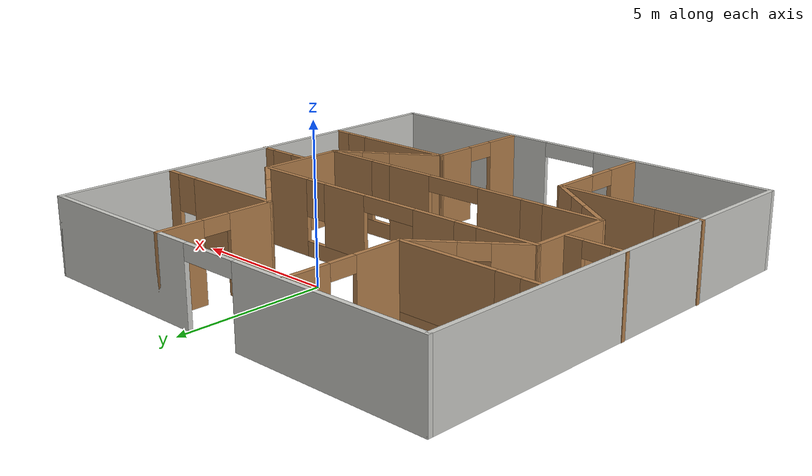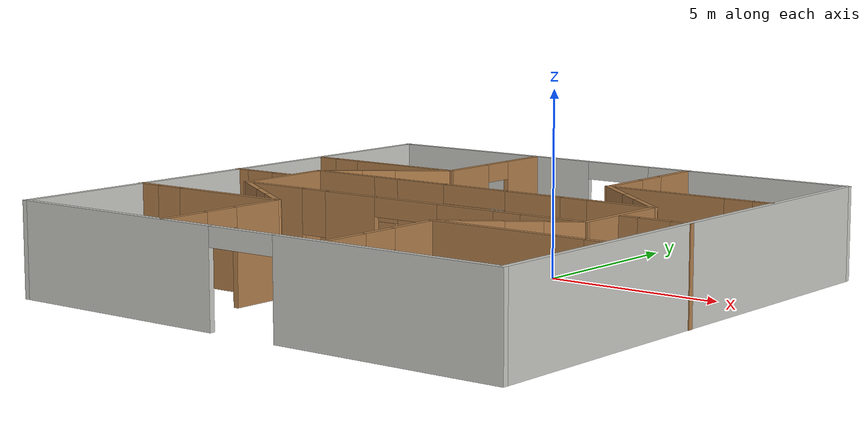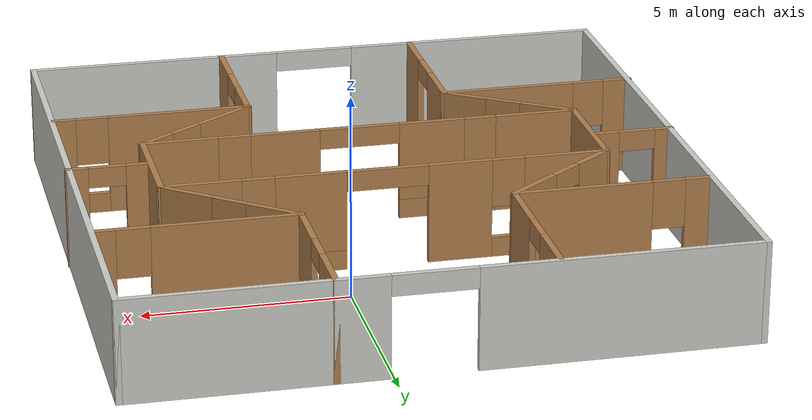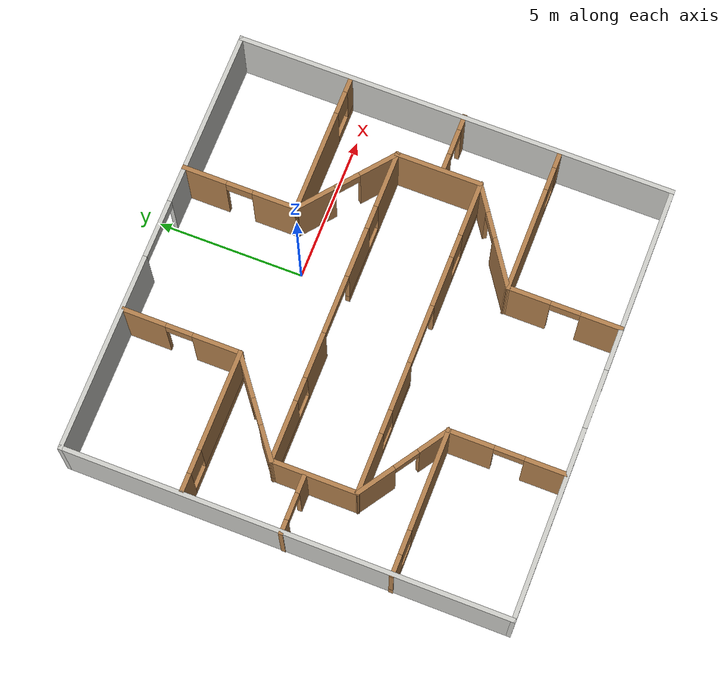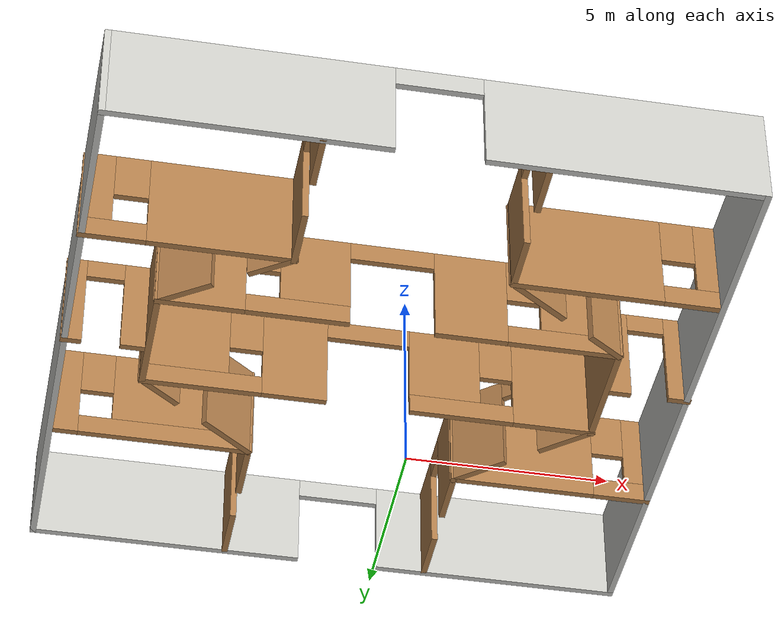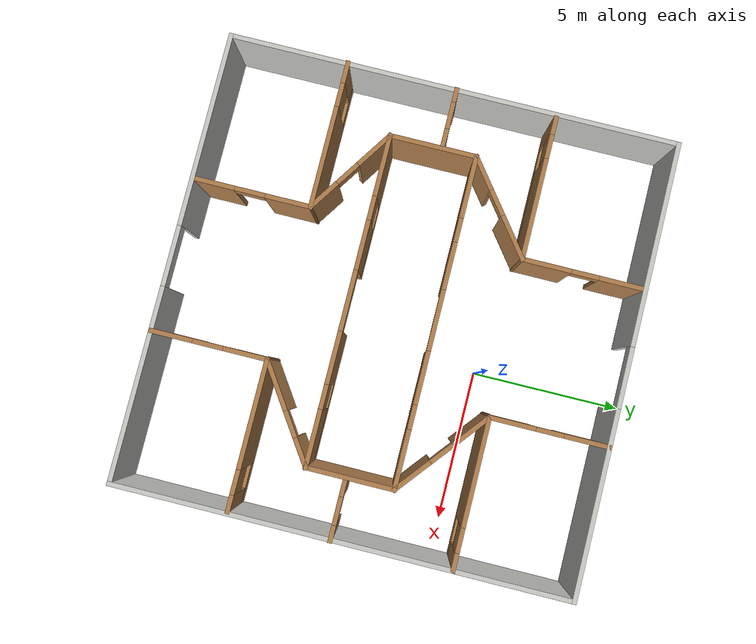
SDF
<?xml version='1.0'?>
<sdf version='1.6'>
  <model name='my_building'>
    <pose frame=''>-1.23215 -2.94383 0 0 -0 0</pose>
    <link name='Wall_106'>
      <pose frame=''>-4.91785 3.41483 0 0 -0 0</pose>
      <visual name='Wall_106_Visual_0'>
        <pose frame=''>-2.11085 0 1.25 0 -0 0</pose>
        <geometry>
          <box>
            <size>0.628291 0.15 2.5</size>
          </box>
        </geometry>
        <material>
          <script>
            <uri>file://media/materials/scripts/gazebo.material</uri>
            <name>Gazebo/Wood</name>
          </script>
          <ambient>0.996078 0.47451 0.0196078 1</ambient>
        </material>
      </visual>
      <collision name='Wall_106_Collision_0'>
        <geometry>
          <box>
            <size>0.628291 0.15 2.5</size>
          </box>
        </geometry>
        <pose frame=''>-2.11085 0 1.25 0 -0 0</pose>
      </collision>
      <visual name='Wall_106_Visual_1'>
        <pose frame=''>0.314146 0 0.25 0 -0 0</pose>
        <geometry>
          <box>
            <size>4.22171 0.15 0.5</size>
          </box>
        </geometry>
        <material>
          <script>
            <uri>file://media/materials/scripts/gazebo.material</uri>
            <name>Gazebo/Wood</name>
          </script>
          <ambient>0.996078 0.47451 0.0196078 1</ambient>
        </material>
      </visual>
      <collision name='Wall_106_Collision_1'>
        <geometry>
          <box>
            <size>4.22171 0.15 0.5</size>
          </box>
        </geometry>
        <pose frame=''>0.314146 0 0.25 0 -0 0</pose>
      </collision>
      <visual name='Wall_106_Visual_2'>
        <pose frame=''>0.714146 0 1.5 0 -0 0</pose>
        <geometry>
          <box>
            <size>3.42171 0.15 2</size>
          </box>
        </geometry>
        <material>
          <script>
            <uri>file://media/materials/scripts/gazebo.material</uri>
            <name>Gazebo/Wood</name>
          </script>
          <ambient>0.996078 0.47451 0.0196078 1</ambient>
        </material>
      </visual>
      <collision name='Wall_106_Collision_2'>
        <geometry>
          <box>
            <size>3.42171 0.15 2</size>
          </box>
        </geometry>
        <pose frame=''>0.714146 0 1.5 0 -0 0</pose>
      </collision>
      <visual name='Wall_106_Visual_3'>
        <pose frame=''>-1.39671 0 1.9 0 -0 0</pose>
        <geometry>
          <box>
            <size>0.8 0.15 1.2</size>
          </box>
        </geometry>
        <material>
          <script>
            <uri>file://media/materials/scripts/gazebo.material</uri>
            <name>Gazebo/Wood</name>
          </script>
          <ambient>0.996078 0.47451 0.0196078 1</ambient>
        </material>
      </visual>
      <collision name='Wall_106_Collision_3'>
        <geometry>
          <box>
            <size>0.8 0.15 1.2</size>
          </box>
        </geometry>
        <pose frame=''>-1.39671 0 1.9 0 -0 0</pose>
      </collision>
    </link>
    <link name='Wall_110'>
      <pose frame=''>-4.98829 -3.52523 0 0 -0 3.14159</pose>
      <visual name='Wall_110_Visual_0'>
        <pose frame=''>-0.776842 0 1.25 0 -0 0</pose>
        <geometry>
          <box>
            <size>3.44632 0.15 2.5</size>
          </box>
        </geometry>
        <material>
          <script>
            <uri>file://media/materials/scripts/gazebo.material</uri>
            <name>Gazebo/Wood</name>
          </script>
          <ambient>0.996078 0.47451 0.0196078 1</ambient>
        </material>
      </visual>
      <collision name='Wall_110_Collision_0'>
        <geometry>
          <box>
            <size>3.44632 0.15 2.5</size>
          </box>
        </geometry>
        <pose frame=''>-0.776842 0 1.25 0 -0 0</pose>
      </collision>
      <visual name='Wall_110_Visual_1'>
        <pose frame=''>1.72316 0 0.25 0 -0 0</pose>
        <geometry>
          <box>
            <size>1.55368 0.15 0.5</size>
          </box>
        </geometry>
        <material>
          <script>
            <uri>file://media/materials/scripts/gazebo.material</uri>
            <name>Gazebo/Wood</name>
          </script>
          <ambient>0.996078 0.47451 0.0196078 1</ambient>
        </material>
      </visual>
      <collision name='Wall_110_Collision_1'>
        <geometry>
          <box>
            <size>1.55368 0.15 0.5</size>
          </box>
        </geometry>
        <pose frame=''>1.72316 0 0.25 0 -0 0</pose>
      </collision>
      <visual name='Wall_110_Visual_2'>
        <pose frame=''>2.12316 0 1.5 0 -0 0</pose>
        <geometry>
          <box>
            <size>0.753684 0.15 2</size>
          </box>
        </geometry>
        <material>
          <script>
            <uri>file://media/materials/scripts/gazebo.material</uri>
            <name>Gazebo/Wood</name>
          </script>
          <ambient>0.996078 0.47451 0.0196078 1</ambient>
        </material>
      </visual>
      <collision name='Wall_110_Collision_2'>
        <geometry>
          <box>
            <size>0.753684 0.15 2</size>
          </box>
        </geometry>
        <pose frame=''>2.12316 0 1.5 0 -0 0</pose>
      </collision>
      <visual name='Wall_110_Visual_3'>
        <pose frame=''>1.34632 0 1.9 0 -0 0</pose>
        <geometry>
          <box>
            <size>0.8 0.15 1.2</size>
          </box>
        </geometry>
        <material>
          <script>
            <uri>file://media/materials/scripts/gazebo.material</uri>
            <name>Gazebo/Wood</name>
          </script>
          <ambient>0.996078 0.47451 0.0196078 1</ambient>
        </material>
      </visual>
      <collision name='Wall_110_Collision_3'>
        <geometry>
          <box>
            <size>0.8 0.15 1.2</size>
          </box>
        </geometry>
        <pose frame=''>1.34632 0 1.9 0 -0 0</pose>
      </collision>
    </link>
    <link name='Wall_112'>
      <pose frame=''>4.89491 -3.63421 0 0 0 -1.6e-05</pose>
      <visual name='Wall_112_Visual_0'>
        <pose frame=''>-0.698891 0 1.25 0 -0 0</pose>
        <geometry>
          <box>
            <size>3.60222 0.15 2.5</size>
          </box>
        </geometry>
        <material>
          <script>
            <uri>file://media/materials/scripts/gazebo.material</uri>
            <name>Gazebo/Wood</name>
          </script>
          <ambient>0.996078 0.47451 0.0196078 1</ambient>
        </material>
      </visual>
      <collision name='Wall_112_Collision_0'>
        <geometry>
          <box>
            <size>3.60222 0.15 2.5</size>
          </box>
        </geometry>
        <pose frame=''>-0.698891 0 1.25 0 -0 0</pose>
      </collision>
      <visual name='Wall_112_Visual_1'>
        <pose frame=''>1.80111 0 0.25 0 -0 0</pose>
        <geometry>
          <box>
            <size>1.39778 0.15 0.5</size>
          </box>
        </geometry>
        <material>
          <script>
            <uri>file://media/materials/scripts/gazebo.material</uri>
            <name>Gazebo/Wood</name>
          </script>
          <ambient>0.996078 0.47451 0.0196078 1</ambient>
        </material>
      </visual>
      <collision name='Wall_112_Collision_1'>
        <geometry>
          <box>
            <size>1.39778 0.15 0.5</size>
          </box>
        </geometry>
        <pose frame=''>1.80111 0 0.25 0 -0 0</pose>
      </collision>
      <visual name='Wall_112_Visual_2'>
        <pose frame=''>2.20111 0 1.5 0 -0 0</pose>
        <geometry>
          <box>
            <size>0.597783 0.15 2</size>
          </box>
        </geometry>
        <material>
          <script>
            <uri>file://media/materials/scripts/gazebo.material</uri>
            <name>Gazebo/Wood</name>
          </script>
          <ambient>0.996078 0.47451 0.0196078 1</ambient>
        </material>
      </visual>
      <collision name='Wall_112_Collision_2'>
        <geometry>
          <box>
            <size>0.597783 0.15 2</size>
          </box>
        </geometry>
        <pose frame=''>2.20111 0 1.5 0 -0 0</pose>
      </collision>
      <visual name='Wall_112_Visual_3'>
        <pose frame=''>1.50222 0 1.9 0 -0 0</pose>
        <geometry>
          <box>
            <size>0.8 0.15 1.2</size>
          </box>
        </geometry>
        <material>
          <script>
            <uri>file://media/materials/scripts/gazebo.material</uri>
            <name>Gazebo/Wood</name>
          </script>
          <ambient>0.996078 0.47451 0.0196078 1</ambient>
        </material>
      </visual>
      <collision name='Wall_112_Collision_3'>
        <geometry>
          <box>
            <size>0.8 0.15 1.2</size>
          </box>
        </geometry>
        <pose frame=''>1.50222 0 1.9 0 -0 0</pose>
      </collision>
    </link>
    <link name='Wall_121'>
      <pose frame=''>-6.47923 0.092939 0 0 -0 0</pose>
      <visual name='Wall_121_Visual_0'>
        <pose frame=''>-0.75294 0 1.25 0 -0 0</pose>
        <geometry>
          <box>
            <size>0.494121 0.15 2.5</size>
          </box>
        </geometry>
        <material>
          <script>
            <uri>file://media/materials/scripts/gazebo.material</uri>
            <name>Gazebo/Wood</name>
          </script>
          <ambient>1 1 0 1</ambient>
        </material>
      </visual>
      <collision name='Wall_121_Collision_0'>
        <geometry>
          <box>
            <size>0.494121 0.15 2.5</size>
          </box>
        </geometry>
        <pose frame=''>-0.75294 0 1.25 0 -0 0</pose>
      </collision>
      <visual name='Wall_121_Visual_1'>
        <pose frame=''>0.69706 0 1.25 0 -0 0</pose>
        <geometry>
          <box>
            <size>0.605879 0.15 2.5</size>
          </box>
        </geometry>
        <material>
          <script>
            <uri>file://media/materials/scripts/gazebo.material</uri>
            <name>Gazebo/Wood</name>
          </script>
          <ambient>1 1 0 1</ambient>
        </material>
      </visual>
      <collision name='Wall_121_Collision_1'>
        <geometry>
          <box>
            <size>0.605879 0.15 2.5</size>
          </box>
        </geometry>
        <pose frame=''>0.69706 0 1.25 0 -0 0</pose>
      </collision>
      <visual name='Wall_121_Visual_2'>
        <pose frame=''>-0.055879 0 2.25 0 -0 0</pose>
        <geometry>
          <box>
            <size>0.9 0.15 0.5</size>
          </box>
        </geometry>
        <material>
          <script>
            <uri>file://media/materials/scripts/gazebo.material</uri>
            <name>Gazebo/Wood</name>
          </script>
          <ambient>1 1 0 1</ambient>
        </material>
      </visual>
      <collision name='Wall_121_Collision_2'>
        <geometry>
          <box>
            <size>0.9 0.15 0.5</size>
          </box>
        </geometry>
        <pose frame=''>-0.055879 0 2.25 0 -0 0</pose>
      </collision>
    </link>
    <link name='Wall_127'>
      <pose frame=''>6.48829 -0.329162 0 0 -0 3.14159</pose>
      <visual name='Wall_127_Visual_0'>
        <pose frame=''>-0.719515 0 1.25 0 -0 0</pose>
        <geometry>
          <box>
            <size>0.56097 0.15 2.5</size>
          </box>
        </geometry>
        <material>
          <script>
            <uri>file://media/materials/scripts/gazebo.material</uri>
            <name>Gazebo/Wood</name>
          </script>
          <ambient>1 1 0 1</ambient>
        </material>
      </visual>
      <collision name='Wall_127_Collision_0'>
        <geometry>
          <box>
            <size>0.56097 0.15 2.5</size>
          </box>
        </geometry>
        <pose frame=''>-0.719515 0 1.25 0 -0 0</pose>
      </collision>
      <visual name='Wall_127_Visual_1'>
        <pose frame=''>0.730485 0 1.25 0 -0 0</pose>
        <geometry>
          <box>
            <size>0.53903 0.15 2.5</size>
          </box>
        </geometry>
        <material>
          <script>
            <uri>file://media/materials/scripts/gazebo.material</uri>
            <name>Gazebo/Wood</name>
          </script>
          <ambient>1 1 0 1</ambient>
        </material>
      </visual>
      <collision name='Wall_127_Collision_1'>
        <geometry>
          <box>
            <size>0.53903 0.15 2.5</size>
          </box>
        </geometry>
        <pose frame=''>0.730485 0 1.25 0 -0 0</pose>
      </collision>
      <visual name='Wall_127_Visual_2'>
        <pose frame=''>0.01097 0 2.25 0 -0 0</pose>
        <geometry>
          <box>
            <size>0.9 0.15 0.5</size>
          </box>
        </geometry>
        <material>
          <script>
            <uri>file://media/materials/scripts/gazebo.material</uri>
            <name>Gazebo/Wood</name>
          </script>
          <ambient>1 1 0 1</ambient>
        </material>
      </visual>
      <collision name='Wall_127_Collision_2'>
        <geometry>
          <box>
            <size>0.9 0.15 0.5</size>
          </box>
        </geometry>
        <pose frame=''>0.01097 0 2.25 0 -0 0</pose>
      </collision>
    </link>
    <link name='Wall_131'>
      <collision name='Wall_131_Collision'>
        <geometry>
          <box>
            <size>3 0.15 2.5</size>
          </box>
        </geometry>
        <pose frame=''>0 0 1.25 0 -0 0</pose>
      </collision>
      <visual name='Wall_131_Visual'>
        <pose frame=''>0 0 1.25 0 -0 0</pose>
        <geometry>
          <box>
            <size>3 0.15 2.5</size>
          </box>
        </geometry>
        <material>
          <script>
            <uri>file://media/materials/scripts/gazebo.material</uri>
            <name>Gazebo/Wood</name>
          </script>
          <ambient>0.333333 1 0 1</ambient>
        </material>
      </visual>
      <pose frame=''>-5.42447 -0.198993 0 0 0 -1.5708</pose>
    </link>
    <link name='Wall_132'>
      <pose frame=''>0.000529 -1.62399 0 0 -0 0</pose>
      <visual name='Wall_132_Visual_0'>
        <pose frame=''>-4.45342 0 1.25 0 -0 0</pose>
        <geometry>
          <box>
            <size>2.09316 0.15 2.5</size>
          </box>
        </geometry>
        <material>
          <script>
            <uri>file://media/materials/scripts/gazebo.material</uri>
            <name>Gazebo/Wood</name>
          </script>
          <ambient>0.333333 1 0 1</ambient>
        </material>
      </visual>
      <collision name='Wall_132_Collision_0'>
        <geometry>
          <box>
            <size>2.09316 0.15 2.5</size>
          </box>
        </geometry>
        <pose frame=''>-4.45342 0 1.25 0 -0 0</pose>
      </collision>
      <visual name='Wall_132_Visual_1'>
        <pose frame=''>1.90465 0 1.25 0 -0 0</pose>
        <geometry>
          <box>
            <size>1.7278 0.15 2.5</size>
          </box>
        </geometry>
        <material>
          <script>
            <uri>file://media/materials/scripts/gazebo.material</uri>
            <name>Gazebo/Wood</name>
          </script>
          <ambient>0.333333 1 0 1</ambient>
        </material>
      </visual>
      <collision name='Wall_132_Collision_1'>
        <geometry>
          <box>
            <size>1.7278 0.15 2.5</size>
          </box>
        </geometry>
        <pose frame=''>1.90465 0 1.25 0 -0 0</pose>
      </collision>
      <visual name='Wall_132_Visual_2'>
        <pose frame=''>-2.18304 0 0.25 0 -0 0</pose>
        <geometry>
          <box>
            <size>2.4476 0.15 0.5</size>
          </box>
        </geometry>
        <material>
          <script>
            <uri>file://media/materials/scripts/gazebo.material</uri>
            <name>Gazebo/Wood</name>
          </script>
          <ambient>0.333333 1 0 1</ambient>
        </material>
      </visual>
      <collision name='Wall_132_Collision_2'>
        <geometry>
          <box>
            <size>2.4476 0.15 0.5</size>
          </box>
        </geometry>
        <pose frame=''>-2.18304 0 0.25 0 -0 0</pose>
      </collision>
      <visual name='Wall_132_Visual_3'>
        <pose frame=''>4.13427 0 0.25 0 -0 0</pose>
        <geometry>
          <box>
            <size>2.73145 0.15 0.5</size>
          </box>
        </geometry>
        <material>
          <script>
            <uri>file://media/materials/scripts/gazebo.material</uri>
            <name>Gazebo/Wood</name>
          </script>
          <ambient>0.333333 1 0 1</ambient>
        </material>
      </visual>
      <collision name='Wall_132_Collision_3'>
        <geometry>
          <box>
            <size>2.73145 0.15 0.5</size>
          </box>
        </geometry>
        <pose frame=''>4.13427 0 0.25 0 -0 0</pose>
      </collision>
      <visual name='Wall_132_Visual_4'>
        <pose frame=''>-1.78304 0 1.5 0 -0 0</pose>
        <geometry>
          <box>
            <size>1.6476 0.15 2</size>
          </box>
        </geometry>
        <material>
          <script>
            <uri>file://media/materials/scripts/gazebo.material</uri>
            <name>Gazebo/Wood</name>
          </script>
          <ambient>0.333333 1 0 1</ambient>
        </material>
      </visual>
      <collision name='Wall_132_Collision_4'>
        <geometry>
          <box>
            <size>1.6476 0.15 2</size>
          </box>
        </geometry>
        <pose frame=''>-1.78304 0 1.5 0 -0 0</pose>
      </collision>
      <visual name='Wall_132_Visual_5'>
        <pose frame=''>-1.78304 0 1.5 0 -0 0</pose>
        <geometry>
          <box>
            <size>1.6476 0.15 2</size>
          </box>
        </geometry>
        <material>
          <script>
            <uri>file://media/materials/scripts/gazebo.material</uri>
            <name>Gazebo/Wood</name>
          </script>
          <ambient>0.333333 1 0 1</ambient>
        </material>
      </visual>
      <collision name='Wall_132_Collision_5'>
        <geometry>
          <box>
            <size>1.6476 0.15 2</size>
          </box>
        </geometry>
        <pose frame=''>-1.78304 0 1.5 0 -0 0</pose>
      </collision>
      <visual name='Wall_132_Visual_6'>
        <pose frame=''>4.53428 0 1.5 0 -0 0</pose>
        <geometry>
          <box>
            <size>1.93145 0.15 2</size>
          </box>
        </geometry>
        <material>
          <script>
            <uri>file://media/materials/scripts/gazebo.material</uri>
            <name>Gazebo/Wood</name>
          </script>
          <ambient>0.333333 1 0 1</ambient>
        </material>
      </visual>
      <collision name='Wall_132_Collision_6'>
        <geometry>
          <box>
            <size>1.93145 0.15 2</size>
          </box>
        </geometry>
        <pose frame=''>4.53428 0 1.5 0 -0 0</pose>
      </collision>
      <visual name='Wall_132_Visual_7'>
        <pose frame=''>-3.00684 0 1.9 0 -0 0</pose>
        <geometry>
          <box>
            <size>0.8 0.15 1.2</size>
          </box>
        </geometry>
        <material>
          <script>
            <uri>file://media/materials/scripts/gazebo.material</uri>
            <name>Gazebo/Wood</name>
          </script>
          <ambient>0.333333 1 0 1</ambient>
        </material>
      </visual>
      <collision name='Wall_132_Collision_7'>
        <geometry>
          <box>
            <size>0.8 0.15 1.2</size>
          </box>
        </geometry>
        <pose frame=''>-3.00684 0 1.9 0 -0 0</pose>
      </collision>
      <visual name='Wall_132_Visual_8'>
        <pose frame=''>3.16855 0 1.9 0 -0 0</pose>
        <geometry>
          <box>
            <size>0.8 0.15 1.2</size>
          </box>
        </geometry>
        <material>
          <script>
            <uri>file://media/materials/scripts/gazebo.material</uri>
            <name>Gazebo/Wood</name>
          </script>
          <ambient>0.333333 1 0 1</ambient>
        </material>
      </visual>
      <collision name='Wall_132_Collision_8'>
        <geometry>
          <box>
            <size>0.8 0.15 1.2</size>
          </box>
        </geometry>
        <pose frame=''>3.16855 0 1.9 0 -0 0</pose>
      </collision>
      <visual name='Wall_132_Visual_9'>
        <pose frame=''>0.040754 0 2.25 0 -0 0</pose>
        <geometry>
          <box>
            <size>2 0.15 0.5</size>
          </box>
        </geometry>
        <material>
          <script>
            <uri>file://media/materials/scripts/gazebo.material</uri>
            <name>Gazebo/Wood</name>
          </script>
          <ambient>0.333333 1 0 1</ambient>
        </material>
      </visual>
      <collision name='Wall_132_Collision_9'>
        <geometry>
          <box>
            <size>2 0.15 0.5</size>
          </box>
        </geometry>
        <pose frame=''>0.040754 0 2.25 0 -0 0</pose>
      </collision>
      <visual name='Wall_132_Visual_10'>
        <pose frame=''>0.040754 0 2.25 0 -0 0</pose>
        <geometry>
          <box>
            <size>2 0.15 0.5</size>
          </box>
        </geometry>
        <material>
          <script>
            <uri>file://media/materials/scripts/gazebo.material</uri>
            <name>Gazebo/Wood</name>
          </script>
          <ambient>0.333333 1 0 1</ambient>
        </material>
      </visual>
      <collision name='Wall_132_Collision_10'>
        <geometry>
          <box>
            <size>2 0.15 0.5</size>
          </box>
        </geometry>
        <pose frame=''>0.040754 0 2.25 0 -0 0</pose>
      </collision>
    </link>
    <link name='Wall_133'>
      <collision name='Wall_133_Collision'>
        <geometry>
          <box>
            <size>3 0.15 2.5</size>
          </box>
        </geometry>
        <pose frame=''>0 0 1.25 0 -0 0</pose>
      </collision>
      <visual name='Wall_133_Visual'>
        <pose frame=''>0 0 1.25 0 -0 0</pose>
        <geometry>
          <box>
            <size>3 0.15 2.5</size>
          </box>
        </geometry>
        <material>
          <script>
            <uri>file://media/materials/scripts/gazebo.material</uri>
            <name>Gazebo/Wood</name>
          </script>
          <ambient>0.333333 1 0 1</ambient>
        </material>
      </visual>
      <pose frame=''>5.42553 -0.198993 0 0 -0 1.5708</pose>
    </link>
    <link name='Wall_134'>
      <pose frame=''>0.000529 1.22601 0 0 -0 3.14159</pose>
      <visual name='Wall_134_Visual_0'>
        <pose frame=''>-4.5042 0 1.25 0 -0 0</pose>
        <geometry>
          <box>
            <size>1.9916 0.15 2.5</size>
          </box>
        </geometry>
        <material>
          <script>
            <uri>file://media/materials/scripts/gazebo.material</uri>
            <name>Gazebo/Wood</name>
          </script>
          <ambient>0.333333 1 0 1</ambient>
        </material>
      </visual>
      <collision name='Wall_134_Collision_0'>
        <geometry>
          <box>
            <size>1.9916 0.15 2.5</size>
          </box>
        </geometry>
        <pose frame=''>-4.5042 0 1.25 0 -0 0</pose>
      </collision>
      <visual name='Wall_134_Visual_1'>
        <pose frame=''>1.80309 0 1.25 0 -0 0</pose>
        <geometry>
          <box>
            <size>1.5674 0.15 2.5</size>
          </box>
        </geometry>
        <material>
          <script>
            <uri>file://media/materials/scripts/gazebo.material</uri>
            <name>Gazebo/Wood</name>
          </script>
          <ambient>0.333333 1 0 1</ambient>
        </material>
      </visual>
      <collision name='Wall_134_Collision_1'>
        <geometry>
          <box>
            <size>1.5674 0.15 2.5</size>
          </box>
        </geometry>
        <pose frame=''>1.80309 0 1.25 0 -0 0</pose>
      </collision>
      <visual name='Wall_134_Visual_2'>
        <pose frame=''>-2.2445 0 0.25 0 -0 0</pose>
        <geometry>
          <box>
            <size>2.5278 0.15 0.5</size>
          </box>
        </geometry>
        <material>
          <script>
            <uri>file://media/materials/scripts/gazebo.material</uri>
            <name>Gazebo/Wood</name>
          </script>
          <ambient>0.333333 1 0 1</ambient>
        </material>
      </visual>
      <collision name='Wall_134_Collision_2'>
        <geometry>
          <box>
            <size>2.5278 0.15 0.5</size>
          </box>
        </geometry>
        <pose frame=''>-2.2445 0 0.25 0 -0 0</pose>
      </collision>
      <visual name='Wall_134_Visual_3'>
        <pose frame=''>4.0434 0 0.25 0 -0 0</pose>
        <geometry>
          <box>
            <size>2.91321 0.15 0.5</size>
          </box>
        </geometry>
        <material>
          <script>
            <uri>file://media/materials/scripts/gazebo.material</uri>
            <name>Gazebo/Wood</name>
          </script>
          <ambient>0.333333 1 0 1</ambient>
        </material>
      </visual>
      <collision name='Wall_134_Collision_3'>
        <geometry>
          <box>
            <size>2.91321 0.15 0.5</size>
          </box>
        </geometry>
        <pose frame=''>4.0434 0 0.25 0 -0 0</pose>
      </collision>
      <visual name='Wall_134_Visual_4'>
        <pose frame=''>-1.8445 0 1.5 0 -0 0</pose>
        <geometry>
          <box>
            <size>1.7278 0.15 2</size>
          </box>
        </geometry>
        <material>
          <script>
            <uri>file://media/materials/scripts/gazebo.material</uri>
            <name>Gazebo/Wood</name>
          </script>
          <ambient>0.333333 1 0 1</ambient>
        </material>
      </visual>
      <collision name='Wall_134_Collision_4'>
        <geometry>
          <box>
            <size>1.7278 0.15 2</size>
          </box>
        </geometry>
        <pose frame=''>-1.8445 0 1.5 0 -0 0</pose>
      </collision>
      <visual name='Wall_134_Visual_5'>
        <pose frame=''>-1.8445 0 1.5 0 -0 0</pose>
        <geometry>
          <box>
            <size>1.7278 0.15 2</size>
          </box>
        </geometry>
        <material>
          <script>
            <uri>file://media/materials/scripts/gazebo.material</uri>
            <name>Gazebo/Wood</name>
          </script>
          <ambient>0.333333 1 0 1</ambient>
        </material>
      </visual>
      <collision name='Wall_134_Collision_5'>
        <geometry>
          <box>
            <size>1.7278 0.15 2</size>
          </box>
        </geometry>
        <pose frame=''>-1.8445 0 1.5 0 -0 0</pose>
      </collision>
      <visual name='Wall_134_Visual_6'>
        <pose frame=''>4.4434 0 1.5 0 -0 0</pose>
        <geometry>
          <box>
            <size>2.11321 0.15 2</size>
          </box>
        </geometry>
        <material>
          <script>
            <uri>file://media/materials/scripts/gazebo.material</uri>
            <name>Gazebo/Wood</name>
          </script>
          <ambient>0.333333 1 0 1</ambient>
        </material>
      </visual>
      <collision name='Wall_134_Collision_6'>
        <geometry>
          <box>
            <size>2.11321 0.15 2</size>
          </box>
        </geometry>
        <pose frame=''>4.4434 0 1.5 0 -0 0</pose>
      </collision>
      <visual name='Wall_134_Visual_7'>
        <pose frame=''>-3.1084 0 1.9 0 -0 0</pose>
        <geometry>
          <box>
            <size>0.8 0.15 1.2</size>
          </box>
        </geometry>
        <material>
          <script>
            <uri>file://media/materials/scripts/gazebo.material</uri>
            <name>Gazebo/Wood</name>
          </script>
          <ambient>0.333333 1 0 1</ambient>
        </material>
      </visual>
      <collision name='Wall_134_Collision_7'>
        <geometry>
          <box>
            <size>0.8 0.15 1.2</size>
          </box>
        </geometry>
        <pose frame=''>-3.1084 0 1.9 0 -0 0</pose>
      </collision>
      <visual name='Wall_134_Visual_8'>
        <pose frame=''>2.98679 0 1.9 0 -0 0</pose>
        <geometry>
          <box>
            <size>0.8 0.15 1.2</size>
          </box>
        </geometry>
        <material>
          <script>
            <uri>file://media/materials/scripts/gazebo.material</uri>
            <name>Gazebo/Wood</name>
          </script>
          <ambient>0.333333 1 0 1</ambient>
        </material>
      </visual>
      <collision name='Wall_134_Collision_8'>
        <geometry>
          <box>
            <size>0.8 0.15 1.2</size>
          </box>
        </geometry>
        <pose frame=''>2.98679 0 1.9 0 -0 0</pose>
      </collision>
      <visual name='Wall_134_Visual_9'>
        <pose frame=''>0.019396 0 2.25 0 -0 0</pose>
        <geometry>
          <box>
            <size>2 0.15 0.5</size>
          </box>
        </geometry>
        <material>
          <script>
            <uri>file://media/materials/scripts/gazebo.material</uri>
            <name>Gazebo/Wood</name>
          </script>
          <ambient>0.333333 1 0 1</ambient>
        </material>
      </visual>
      <collision name='Wall_134_Collision_9'>
        <geometry>
          <box>
            <size>2 0.15 0.5</size>
          </box>
        </geometry>
        <pose frame=''>0.019396 0 2.25 0 -0 0</pose>
      </collision>
      <visual name='Wall_134_Visual_10'>
        <pose frame=''>0.019396 0 2.25 0 -0 0</pose>
        <geometry>
          <box>
            <size>2 0.15 0.5</size>
          </box>
        </geometry>
        <material>
          <script>
            <uri>file://media/materials/scripts/gazebo.material</uri>
            <name>Gazebo/Wood</name>
          </script>
          <ambient>0.333333 1 0 1</ambient>
        </material>
      </visual>
      <collision name='Wall_134_Collision_10'>
        <geometry>
          <box>
            <size>2 0.15 0.5</size>
          </box>
        </geometry>
        <pose frame=''>0.019396 0 2.25 0 -0 0</pose>
      </collision>
    </link>
    <link name='Wall_156'>
      <pose frame=''>2.53674 5.5 0 0 0 -1.5708</pose>
      <visual name='Wall_156_Visual_0'>
        <pose frame=''>-1.23347 0 1.25 0 -0 0</pose>
        <geometry>
          <box>
            <size>1.53306 0.15 2.5</size>
          </box>
        </geometry>
        <material>
          <script>
            <uri>file://media/materials/scripts/gazebo.material</uri>
            <name>Gazebo/Wood</name>
          </script>
          <ambient>0.996078 0.47451 0.0196078 1</ambient>
        </material>
      </visual>
      <collision name='Wall_156_Collision_0'>
        <geometry>
          <box>
            <size>1.53306 0.15 2.5</size>
          </box>
        </geometry>
        <pose frame=''>-1.23347 0 1.25 0 -0 0</pose>
      </collision>
      <visual name='Wall_156_Visual_1'>
        <pose frame=''>1.21653 0 1.25 0 -0 0</pose>
        <geometry>
          <box>
            <size>1.56693 0.15 2.5</size>
          </box>
        </geometry>
        <material>
          <script>
            <uri>file://media/materials/scripts/gazebo.material</uri>
            <name>Gazebo/Wood</name>
          </script>
          <ambient>0.996078 0.47451 0.0196078 1</ambient>
        </material>
      </visual>
      <collision name='Wall_156_Collision_1'>
        <geometry>
          <box>
            <size>1.56693 0.15 2.5</size>
          </box>
        </geometry>
        <pose frame=''>1.21653 0 1.25 0 -0 0</pose>
      </collision>
      <visual name='Wall_156_Visual_2'>
        <pose frame=''>-0.016935 0 2.25 0 -0 0</pose>
        <geometry>
          <box>
            <size>0.9 0.15 0.5</size>
          </box>
        </geometry>
        <material>
          <script>
            <uri>file://media/materials/scripts/gazebo.material</uri>
            <name>Gazebo/Wood</name>
          </script>
          <ambient>0.996078 0.47451 0.0196078 1</ambient>
        </material>
      </visual>
      <collision name='Wall_156_Collision_2'>
        <geometry>
          <box>
            <size>0.9 0.15 0.5</size>
          </box>
        </geometry>
        <pose frame=''>-0.016935 0 2.25 0 -0 0</pose>
      </collision>
    </link>
    <link name='Wall_157'>
      <pose frame=''>4.96174 3.575 0 0 -0 0</pose>
      <visual name='Wall_157_Visual_0'>
        <pose frame=''>-0.71226 0 1.25 0 -0 0</pose>
        <geometry>
          <box>
            <size>3.57548 0.15 2.5</size>
          </box>
        </geometry>
        <material>
          <script>
            <uri>file://media/materials/scripts/gazebo.material</uri>
            <name>Gazebo/Wood</name>
          </script>
          <ambient>0.996078 0.47451 0.0196078 1</ambient>
        </material>
      </visual>
      <collision name='Wall_157_Collision_0'>
        <geometry>
          <box>
            <size>3.57548 0.15 2.5</size>
          </box>
        </geometry>
        <pose frame=''>-0.71226 0 1.25 0 -0 0</pose>
      </collision>
      <visual name='Wall_157_Visual_1'>
        <pose frame=''>1.78774 0 0.25 0 -0 0</pose>
        <geometry>
          <box>
            <size>1.42452 0.15 0.5</size>
          </box>
        </geometry>
        <material>
          <script>
            <uri>file://media/materials/scripts/gazebo.material</uri>
            <name>Gazebo/Wood</name>
          </script>
          <ambient>0.996078 0.47451 0.0196078 1</ambient>
        </material>
      </visual>
      <collision name='Wall_157_Collision_1'>
        <geometry>
          <box>
            <size>1.42452 0.15 0.5</size>
          </box>
        </geometry>
        <pose frame=''>1.78774 0 0.25 0 -0 0</pose>
      </collision>
      <visual name='Wall_157_Visual_2'>
        <pose frame=''>2.18774 0 1.5 0 -0 0</pose>
        <geometry>
          <box>
            <size>0.624521 0.15 2</size>
          </box>
        </geometry>
        <material>
          <script>
            <uri>file://media/materials/scripts/gazebo.material</uri>
            <name>Gazebo/Wood</name>
          </script>
          <ambient>0.996078 0.47451 0.0196078 1</ambient>
        </material>
      </visual>
      <collision name='Wall_157_Collision_2'>
        <geometry>
          <box>
            <size>0.624521 0.15 2</size>
          </box>
        </geometry>
        <pose frame=''>2.18774 0 1.5 0 -0 0</pose>
      </collision>
      <visual name='Wall_157_Visual_3'>
        <pose frame=''>1.47548 0 1.9 0 -0 0</pose>
        <geometry>
          <box>
            <size>0.8 0.15 1.2</size>
          </box>
        </geometry>
        <material>
          <script>
            <uri>file://media/materials/scripts/gazebo.material</uri>
            <name>Gazebo/Wood</name>
          </script>
          <ambient>0.996078 0.47451 0.0196078 1</ambient>
        </material>
      </visual>
      <collision name='Wall_157_Collision_3'>
        <geometry>
          <box>
            <size>0.8 0.15 1.2</size>
          </box>
        </geometry>
        <pose frame=''>1.47548 0 1.9 0 -0 0</pose>
      </collision>
    </link>
    <link name='Wall_163'>
      <pose frame=''>-3.99616 2.32042 0 0 0 -2.48779</pose>
      <visual name='Wall_163_Visual_0'>
        <pose frame=''>-1.07493 0 1.25 0 -0 0</pose>
        <geometry>
          <box>
            <size>1.59891 0.15 2.5</size>
          </box>
        </geometry>
        <material>
          <script>
            <uri>file://media/materials/scripts/gazebo.material</uri>
            <name>Gazebo/Wood</name>
          </script>
          <ambient>0 0.666667 1 1</ambient>
        </material>
      </visual>
      <collision name='Wall_163_Collision_0'>
        <geometry>
          <box>
            <size>1.59891 0.15 2.5</size>
          </box>
        </geometry>
        <pose frame=''>-1.07493 0 1.25 0 -0 0</pose>
      </collision>
      <visual name='Wall_163_Visual_1'>
        <pose frame=''>1.24946 0 1.25 0 -0 0</pose>
        <geometry>
          <box>
            <size>1.24987 0.15 2.5</size>
          </box>
        </geometry>
        <material>
          <script>
            <uri>file://media/materials/scripts/gazebo.material</uri>
            <name>Gazebo/Wood</name>
          </script>
          <ambient>0 0.666667 1 1</ambient>
        </material>
      </visual>
      <collision name='Wall_163_Collision_1'>
        <geometry>
          <box>
            <size>1.24987 0.15 2.5</size>
          </box>
        </geometry>
        <pose frame=''>1.24946 0 1.25 0 -0 0</pose>
      </collision>
      <visual name='Wall_163_Visual_2'>
        <pose frame=''>0.174522 0 2.25 0 -0 0</pose>
        <geometry>
          <box>
            <size>0.9 0.15 0.5</size>
          </box>
        </geometry>
        <material>
          <script>
            <uri>file://media/materials/scripts/gazebo.material</uri>
            <name>Gazebo/Wood</name>
          </script>
          <ambient>0 0.666667 1 1</ambient>
        </material>
      </visual>
      <collision name='Wall_163_Collision_2'>
        <geometry>
          <box>
            <size>0.9 0.15 0.5</size>
          </box>
        </geometry>
        <pose frame=''>0.174522 0 2.25 0 -0 0</pose>
      </collision>
    </link>
    <link name='Wall_165'>
      <pose frame=''>3.98114 2.4005 0 0 0 -0.682704</pose>
      <visual name='Wall_165_Visual_0'>
        <pose frame=''>-1.18979 0 1.25 0 -0 0</pose>
        <geometry>
          <box>
            <size>1.49371 0.15 2.5</size>
          </box>
        </geometry>
        <material>
          <script>
            <uri>file://media/materials/scripts/gazebo.material</uri>
            <name>Gazebo/Wood</name>
          </script>
          <ambient>0 0.666667 1 1</ambient>
        </material>
      </visual>
      <collision name='Wall_165_Collision_0'>
        <geometry>
          <box>
            <size>1.49371 0.15 2.5</size>
          </box>
        </geometry>
        <pose frame=''>-1.18979 0 1.25 0 -0 0</pose>
      </collision>
      <visual name='Wall_165_Visual_1'>
        <pose frame=''>1.19685 0 1.25 0 -0 0</pose>
        <geometry>
          <box>
            <size>1.47958 0.15 2.5</size>
          </box>
        </geometry>
        <material>
          <script>
            <uri>file://media/materials/scripts/gazebo.material</uri>
            <name>Gazebo/Wood</name>
          </script>
          <ambient>0 0.666667 1 1</ambient>
        </material>
      </visual>
      <collision name='Wall_165_Collision_1'>
        <geometry>
          <box>
            <size>1.47958 0.15 2.5</size>
          </box>
        </geometry>
        <pose frame=''>1.19685 0 1.25 0 -0 0</pose>
      </collision>
      <visual name='Wall_165_Visual_2'>
        <pose frame=''>0.007063 0 2.25 0 -0 0</pose>
        <geometry>
          <box>
            <size>0.9 0.15 0.5</size>
          </box>
        </geometry>
        <material>
          <script>
            <uri>file://media/materials/scripts/gazebo.material</uri>
            <name>Gazebo/Wood</name>
          </script>
          <ambient>0 0.666667 1 1</ambient>
        </material>
      </visual>
      <collision name='Wall_165_Collision_2'>
        <geometry>
          <box>
            <size>0.9 0.15 0.5</size>
          </box>
        </geometry>
        <pose frame=''>0.007063 0 2.25 0 -0 0</pose>
      </collision>
    </link>
    <link name='Wall_171'>
      <pose frame=''>2.47015 -5.52017 0 0 0 -1.5708</pose>
      <visual name='Wall_171_Visual_0'>
        <pose frame=''>-1.20523 0 1.25 0 -0 0</pose>
        <geometry>
          <box>
            <size>1.51153 0.15 2.5</size>
          </box>
        </geometry>
        <material>
          <script>
            <uri>file://media/materials/scripts/gazebo.material</uri>
            <name>Gazebo/Wood</name>
          </script>
          <ambient>0.996078 0.47451 0.0196078 1</ambient>
        </material>
      </visual>
      <collision name='Wall_171_Collision_0'>
        <geometry>
          <box>
            <size>1.51153 0.15 2.5</size>
          </box>
        </geometry>
        <pose frame=''>-1.20523 0 1.25 0 -0 0</pose>
      </collision>
      <visual name='Wall_171_Visual_1'>
        <pose frame=''>1.25577 0 1.25 0 -0 0</pose>
        <geometry>
          <box>
            <size>1.41047 0.15 2.5</size>
          </box>
        </geometry>
        <material>
          <script>
            <uri>file://media/materials/scripts/gazebo.material</uri>
            <name>Gazebo/Wood</name>
          </script>
          <ambient>0.996078 0.47451 0.0196078 1</ambient>
        </material>
      </visual>
      <collision name='Wall_171_Collision_1'>
        <geometry>
          <box>
            <size>1.41047 0.15 2.5</size>
          </box>
        </geometry>
        <pose frame=''>1.25577 0 1.25 0 -0 0</pose>
      </collision>
      <visual name='Wall_171_Visual_2'>
        <pose frame=''>0.050533 0 2.25 0 -0 0</pose>
        <geometry>
          <box>
            <size>1 0.15 0.5</size>
          </box>
        </geometry>
        <material>
          <script>
            <uri>file://media/materials/scripts/gazebo.material</uri>
            <name>Gazebo/Wood</name>
          </script>
          <ambient>0.996078 0.47451 0.0196078 1</ambient>
        </material>
      </visual>
      <collision name='Wall_171_Collision_2'>
        <geometry>
          <box>
            <size>1 0.15 0.5</size>
          </box>
        </geometry>
        <pose frame=''>0.050533 0 2.25 0 -0 0</pose>
      </collision>
    </link>
    <link name='Wall_173'>
      <pose frame=''>3.94784 -2.62908 0 0 -0 0.597296</pose>
      <visual name='Wall_173_Visual_0'>
        <pose frame=''>-0.97573 0 1.25 0 -0 0</pose>
        <geometry>
          <box>
            <size>1.77276 0.15 2.5</size>
          </box>
        </geometry>
        <material>
          <script>
            <uri>file://media/materials/scripts/gazebo.material</uri>
            <name>Gazebo/Wood</name>
          </script>
          <ambient>0.435294 0.796078 0.67451 1</ambient>
        </material>
      </visual>
      <collision name='Wall_173_Collision_0'>
        <geometry>
          <box>
            <size>1.77276 0.15 2.5</size>
          </box>
        </geometry>
        <pose frame=''>-0.97573 0 1.25 0 -0 0</pose>
      </collision>
      <visual name='Wall_173_Visual_1'>
        <pose frame=''>1.33638 0 1.25 0 -0 0</pose>
        <geometry>
          <box>
            <size>1.05146 0.15 2.5</size>
          </box>
        </geometry>
        <material>
          <script>
            <uri>file://media/materials/scripts/gazebo.material</uri>
            <name>Gazebo/Wood</name>
          </script>
          <ambient>0.435294 0.796078 0.67451 1</ambient>
        </material>
      </visual>
      <collision name='Wall_173_Collision_1'>
        <geometry>
          <box>
            <size>1.05146 0.15 2.5</size>
          </box>
        </geometry>
        <pose frame=''>1.33638 0 1.25 0 -0 0</pose>
      </collision>
      <visual name='Wall_173_Visual_2'>
        <pose frame=''>0.360652 0 2.25 0 -0 0</pose>
        <geometry>
          <box>
            <size>0.9 0.15 0.5</size>
          </box>
        </geometry>
        <material>
          <script>
            <uri>file://media/materials/scripts/gazebo.material</uri>
            <name>Gazebo/Wood</name>
          </script>
          <ambient>0.435294 0.796078 0.67451 1</ambient>
        </material>
      </visual>
      <collision name='Wall_173_Collision_2'>
        <geometry>
          <box>
            <size>0.9 0.15 0.5</size>
          </box>
        </geometry>
        <pose frame=''>0.360652 0 2.25 0 -0 0</pose>
      </collision>
    </link>
    <link name='Wall_175'>
      <pose frame=''>-3.99388 -2.57461 0 0 0 -0.586498</pose>
      <visual name='Wall_175_Visual_0'>
        <pose frame=''>-1.0612 0 1.25 0 -0 0</pose>
        <geometry>
          <box>
            <size>1.46286 0.15 2.5</size>
          </box>
        </geometry>
        <material>
          <script>
            <uri>file://media/materials/scripts/gazebo.material</uri>
            <name>Gazebo/Wood</name>
          </script>
          <ambient>0.435294 0.796078 0.67451 1</ambient>
        </material>
      </visual>
      <collision name='Wall_175_Collision_0'>
        <geometry>
          <box>
            <size>1.46286 0.15 2.5</size>
          </box>
        </geometry>
        <pose frame=''>-1.0612 0 1.25 0 -0 0</pose>
      </collision>
      <visual name='Wall_175_Visual_1'>
        <pose frame=''>1.18143 0 1.25 0 -0 0</pose>
        <geometry>
          <box>
            <size>1.2224 0.15 2.5</size>
          </box>
        </geometry>
        <material>
          <script>
            <uri>file://media/materials/scripts/gazebo.material</uri>
            <name>Gazebo/Wood</name>
          </script>
          <ambient>0.435294 0.796078 0.67451 1</ambient>
        </material>
      </visual>
      <collision name='Wall_175_Collision_1'>
        <geometry>
          <box>
            <size>1.2224 0.15 2.5</size>
          </box>
        </geometry>
        <pose frame=''>1.18143 0 1.25 0 -0 0</pose>
      </collision>
      <visual name='Wall_175_Visual_2'>
        <pose frame=''>0.120231 0 2.25 0 -0 0</pose>
        <geometry>
          <box>
            <size>0.9 0.15 0.5</size>
          </box>
        </geometry>
        <material>
          <script>
            <uri>file://media/materials/scripts/gazebo.material</uri>
            <name>Gazebo/Wood</name>
          </script>
          <ambient>0.435294 0.796078 0.67451 1</ambient>
        </material>
      </visual>
      <collision name='Wall_175_Collision_2'>
        <geometry>
          <box>
            <size>0.9 0.15 0.5</size>
          </box>
        </geometry>
        <pose frame=''>0.120231 0 2.25 0 -0 0</pose>
      </collision>
    </link>
    <link name='Wall_64'>
      <pose frame=''>0.001972 7.425 0 0 -0 0</pose>
      <visual name='Wall_64_Visual_0'>
        <pose frame=''>-4.07996 0 1.25 0 -0 0</pose>
        <geometry>
          <box>
            <size>6.75984 0.15 2.5</size>
          </box>
        </geometry>
        <material>
          <script>
            <uri>file://media/materials/scripts/gazebo.material</uri>
            <name>Gazebo/CeilingTiled</name>
          </script>
          <ambient>1 0 0 1</ambient>
        </material>
      </visual>
      <collision name='Wall_64_Collision_0'>
        <geometry>
          <box>
            <size>6.75984 0.15 2.5</size>
          </box>
        </geometry>
        <pose frame=''>-4.07996 0 1.25 0 -0 0</pose>
      </collision>
      <visual name='Wall_64_Visual_1'>
        <pose frame=''>4.37992 0 1.25 0 -0 0</pose>
        <geometry>
          <box>
            <size>6.15992 0.15 2.5</size>
          </box>
        </geometry>
        <material>
          <script>
            <uri>file://media/materials/scripts/gazebo.material</uri>
            <name>Gazebo/CeilingTiled</name>
          </script>
          <ambient>1 0 0 1</ambient>
        </material>
      </visual>
      <collision name='Wall_64_Collision_1'>
        <geometry>
          <box>
            <size>6.15992 0.15 2.5</size>
          </box>
        </geometry>
        <pose frame=''>4.37992 0 1.25 0 -0 0</pose>
      </collision>
      <visual name='Wall_64_Visual_2'>
        <pose frame=''>0.29996 0 2.25 0 -0 0</pose>
        <geometry>
          <box>
            <size>2 0.15 0.5</size>
          </box>
        </geometry>
        <material>
          <script>
            <uri>file://media/materials/scripts/gazebo.material</uri>
            <name>Gazebo/CeilingTiled</name>
          </script>
          <ambient>1 0 0 1</ambient>
        </material>
      </visual>
      <collision name='Wall_64_Collision_2'>
        <geometry>
          <box>
            <size>2 0.15 0.5</size>
          </box>
        </geometry>
        <pose frame=''>0.29996 0 2.25 0 -0 0</pose>
      </collision>
    </link>
    <link name='Wall_66'>
      <collision name='Wall_66_Collision'>
        <geometry>
          <box>
            <size>15 0.15 2.5</size>
          </box>
        </geometry>
        <pose frame=''>0 0 1.25 0 -0 0</pose>
      </collision>
      <visual name='Wall_66_Visual'>
        <pose frame=''>0 0 1.25 0 -0 0</pose>
        <geometry>
          <box>
            <size>15 0.15 2.5</size>
          </box>
        </geometry>
        <material>
          <script>
            <uri>file://media/materials/scripts/gazebo.material</uri>
            <name>Gazebo/CeilingTiled</name>
          </script>
          <ambient>1 0 0 1</ambient>
        </material>
      </visual>
      <pose frame=''>7.38675 0 0 0 0 -1.5708</pose>
    </link>
    <link name='Wall_67'>
      <pose frame=''>0.001972 -7.425 0 0 -0 3.14159</pose>
      <visual name='Wall_67_Visual_0'>
        <pose frame=''>-4.23957 0 1.25 0 -0 0</pose>
        <geometry>
          <box>
            <size>6.44062 0.15 2.5</size>
          </box>
        </geometry>
        <material>
          <script>
            <uri>file://media/materials/scripts/gazebo.material</uri>
            <name>Gazebo/CeilingTiled</name>
          </script>
          <ambient>1 0 0 1</ambient>
        </material>
      </visual>
      <collision name='Wall_67_Collision_0'>
        <geometry>
          <box>
            <size>6.44062 0.15 2.5</size>
          </box>
        </geometry>
        <pose frame=''>-4.23957 0 1.25 0 -0 0</pose>
      </collision>
      <visual name='Wall_67_Visual_1'>
        <pose frame=''>4.22031 0 1.25 0 -0 0</pose>
        <geometry>
          <box>
            <size>6.47914 0.15 2.5</size>
          </box>
        </geometry>
        <material>
          <script>
            <uri>file://media/materials/scripts/gazebo.material</uri>
            <name>Gazebo/CeilingTiled</name>
          </script>
          <ambient>1 0 0 1</ambient>
        </material>
      </visual>
      <collision name='Wall_67_Collision_1'>
        <geometry>
          <box>
            <size>6.47914 0.15 2.5</size>
          </box>
        </geometry>
        <pose frame=''>4.22031 0 1.25 0 -0 0</pose>
      </collision>
      <visual name='Wall_67_Visual_2'>
        <pose frame=''>-0.01926 0 2.25 0 -0 0</pose>
        <geometry>
          <box>
            <size>2 0.15 0.5</size>
          </box>
        </geometry>
        <material>
          <script>
            <uri>file://media/materials/scripts/gazebo.material</uri>
            <name>Gazebo/CeilingTiled</name>
          </script>
          <ambient>1 0 0 1</ambient>
        </material>
      </visual>
      <collision name='Wall_67_Collision_2'>
        <geometry>
          <box>
            <size>2 0.15 0.5</size>
          </box>
        </geometry>
        <pose frame=''>-0.01926 0 2.25 0 -0 0</pose>
      </collision>
    </link>
    <link name='Wall_69'>
      <collision name='Wall_69_Collision'>
        <geometry>
          <box>
            <size>15 0.15 2.5</size>
          </box>
        </geometry>
        <pose frame=''>0 0 1.25 0 -0 0</pose>
      </collision>
      <visual name='Wall_69_Visual'>
        <pose frame=''>0 0 1.25 0 -0 0</pose>
        <geometry>
          <box>
            <size>15 0.15 2.5</size>
          </box>
        </geometry>
        <material>
          <script>
            <uri>file://media/materials/scripts/gazebo.material</uri>
            <name>Gazebo/CeilingTiled</name>
          </script>
          <ambient>1 0 0 1</ambient>
        </material>
      </visual>
      <pose frame=''>-7.3828 0 0 0 0 -1.5708</pose>
    </link>
    <link name='Wall_76'>
      <pose frame=''>-2.56329 5.42776 0 0 -0 1.5708</pose>
      <visual name='Wall_76_Visual_0'>
        <pose frame=''>-1.20046 0 1.25 0 -0 0</pose>
        <geometry>
          <box>
            <size>1.59907 0.15 2.5</size>
          </box>
        </geometry>
        <material>
          <script>
            <uri>file://media/materials/scripts/gazebo.material</uri>
            <name>Gazebo/Wood</name>
          </script>
          <ambient>0.996078 0.47451 0.0196078 1</ambient>
        </material>
      </visual>
      <collision name='Wall_76_Collision_0'>
        <geometry>
          <box>
            <size>1.59907 0.15 2.5</size>
          </box>
        </geometry>
        <pose frame=''>-1.20046 0 1.25 0 -0 0</pose>
      </collision>
      <visual name='Wall_76_Visual_1'>
        <pose frame=''>1.24954 0 1.25 0 -0 0</pose>
        <geometry>
          <box>
            <size>1.50093 0.15 2.5</size>
          </box>
        </geometry>
        <material>
          <script>
            <uri>file://media/materials/scripts/gazebo.material</uri>
            <name>Gazebo/Wood</name>
          </script>
          <ambient>0.996078 0.47451 0.0196078 1</ambient>
        </material>
      </visual>
      <collision name='Wall_76_Collision_1'>
        <geometry>
          <box>
            <size>1.50093 0.15 2.5</size>
          </box>
        </geometry>
        <pose frame=''>1.24954 0 1.25 0 -0 0</pose>
      </collision>
      <visual name='Wall_76_Visual_2'>
        <pose frame=''>0.04907 0 2.25 0 -0 0</pose>
        <geometry>
          <box>
            <size>0.9 0.15 0.5</size>
          </box>
        </geometry>
        <material>
          <script>
            <uri>file://media/materials/scripts/gazebo.material</uri>
            <name>Gazebo/Wood</name>
          </script>
          <ambient>0.996078 0.47451 0.0196078 1</ambient>
        </material>
      </visual>
      <collision name='Wall_76_Collision_2'>
        <geometry>
          <box>
            <size>0.9 0.15 0.5</size>
          </box>
        </geometry>
        <pose frame=''>0.04907 0 2.25 0 -0 0</pose>
      </collision>
    </link>
    <link name='Wall_86'>
      <pose frame=''>-2.56329 -5.45023 0 0 0 -1.5708</pose>
      <visual name='Wall_86_Visual_0'>
        <pose frame=''>-1.20982 0 1.25 0 -0 0</pose>
        <geometry>
          <box>
            <size>1.58037 0.15 2.5</size>
          </box>
        </geometry>
        <material>
          <script>
            <uri>file://media/materials/scripts/gazebo.material</uri>
            <name>Gazebo/Wood</name>
          </script>
          <ambient>0.996078 0.47451 0.0196078 1</ambient>
        </material>
      </visual>
      <collision name='Wall_86_Collision_0'>
        <geometry>
          <box>
            <size>1.58037 0.15 2.5</size>
          </box>
        </geometry>
        <pose frame=''>-1.20982 0 1.25 0 -0 0</pose>
      </collision>
      <visual name='Wall_86_Visual_1'>
        <pose frame=''>1.29018 0 1.25 0 -0 0</pose>
        <geometry>
          <box>
            <size>1.41963 0.15 2.5</size>
          </box>
        </geometry>
        <material>
          <script>
            <uri>file://media/materials/scripts/gazebo.material</uri>
            <name>Gazebo/Wood</name>
          </script>
          <ambient>0.996078 0.47451 0.0196078 1</ambient>
        </material>
      </visual>
      <collision name='Wall_86_Collision_1'>
        <geometry>
          <box>
            <size>1.41963 0.15 2.5</size>
          </box>
        </geometry>
        <pose frame=''>1.29018 0 1.25 0 -0 0</pose>
      </collision>
      <visual name='Wall_86_Visual_2'>
        <pose frame=''>0.080368 0 2.25 0 -0 0</pose>
        <geometry>
          <box>
            <size>1 0.15 0.5</size>
          </box>
        </geometry>
        <material>
          <script>
            <uri>file://media/materials/scripts/gazebo.material</uri>
            <name>Gazebo/Wood</name>
          </script>
          <ambient>0.996078 0.47451 0.0196078 1</ambient>
        </material>
      </visual>
      <collision name='Wall_86_Collision_2'>
        <geometry>
          <box>
            <size>1 0.15 0.5</size>
          </box>
        </geometry>
        <pose frame=''>0.080368 0 2.25 0 -0 0</pose>
      </collision>
    </link>
    <static>1</static>
  </model>
</sdf>
